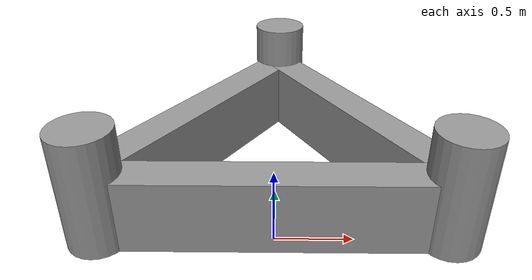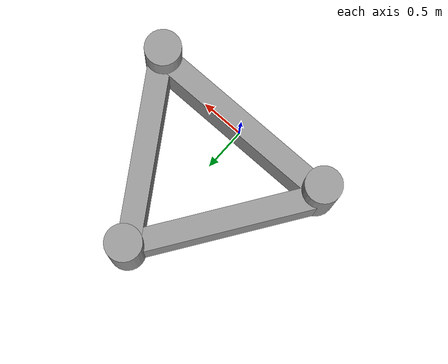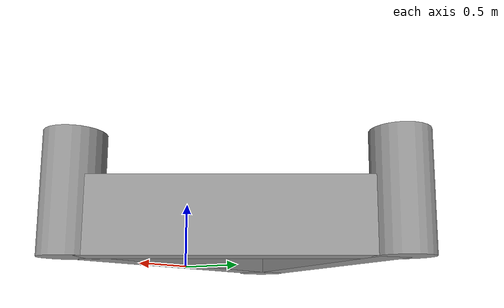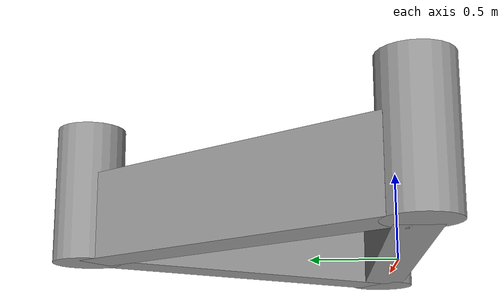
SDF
<?xml version='1.0'?>
<sdf version='1.7'>
  <model name='custom_final_obj'>
    <link name='link_0'>
      <inertial>
        <mass>1</mass>
        <inertia>
          <ixx>0.166667</ixx>
          <ixy>0</ixy>
          <ixz>0</ixz>
          <iyy>0.166667</iyy>
          <iyz>0</iyz>
          <izz>0.166667</izz>
        </inertia>
        <pose>0 0 0 0 -0 0</pose>
      </inertial>
      <pose>0 -0 0.25 0 -0 0</pose>
      <gravity>1</gravity>
      <self_collide>0</self_collide>
      <kinematic>0</kinematic>
      <enable_wind>0</enable_wind>
      <visual name='visual'>
        <pose>0 0 0 0 -0 0</pose>
        <geometry>
          <box>
            <size>2 0.25 0.5</size>
          </box>
        </geometry>
        <material>
          <lighting>1</lighting>
          <script>
            <uri>file://media/materials/scripts/gazebo.material</uri>
            <name>Gazebo/Grey</name>
          </script>
          <shader type='pixel'>
            <normal_map>__default__</normal_map>
          </shader>
          <ambient>0.3 0.3 0.3 1</ambient>
          <diffuse>0.7 0.7 0.7 1</diffuse>
          <specular>0.01 0.01 0.01 1</specular>
          <emissive>0 0 0 1</emissive>
        </material>
        <transparency>0</transparency>
        <cast_shadows>1</cast_shadows>
      </visual>
      <collision name='collision'>
        <laser_retro>0</laser_retro>
        <max_contacts>10</max_contacts>
        <pose>0 0 0 0 -0 0</pose>
        <geometry>
          <box>
            <size>2 0.25 0.5</size>
          </box>
        </geometry>
        <surface>
          <friction>
            <ode>
              <mu>0</mu>
              <mu2>0</mu2>
              <fdir1>0 0 0</fdir1>
              <slip1>1</slip1>
              <slip2>1</slip2>
            </ode>
            <torsional>
              <coefficient>1</coefficient>
              <patch_radius>0</patch_radius>
              <surface_radius>0</surface_radius>
              <use_patch_radius>1</use_patch_radius>
              <ode>
                <slip>0</slip>
              </ode>
            </torsional>
          </friction>
          <bounce>
            <restitution_coefficient>0</restitution_coefficient>
            <threshold>1e+06</threshold>
          </bounce>
          <contact>
            <collide_without_contact>0</collide_without_contact>
            <collide_without_contact_bitmask>1</collide_without_contact_bitmask>
            <collide_bitmask>1</collide_bitmask>
            <ode>
              <soft_cfm>0</soft_cfm>
              <soft_erp>0.2</soft_erp>
              <kp>1e+13</kp>
              <kd>1</kd>
              <max_vel>0.01</max_vel>
              <min_depth>0</min_depth>
            </ode>
            <bullet>
              <split_impulse>1</split_impulse>
              <split_impulse_penetration_threshold>-0.01</split_impulse_penetration_threshold>
              <soft_cfm>0</soft_cfm>
              <soft_erp>0.2</soft_erp>
              <kp>1e+13</kp>
              <kd>1</kd>
            </bullet>
          </contact>
        </surface>
      </collision>
    </link>
    <link name='link_0_clone'>
      <inertial>
        <mass>1</mass>
        <inertia>
          <ixx>0.166667</ixx>
          <ixy>0</ixy>
          <ixz>0</ixz>
          <iyy>0.166667</iyy>
          <iyz>0</iyz>
          <izz>0.166667</izz>
        </inertia>
        <pose>0 0 0 0 -0 0</pose>
      </inertial>
      <pose>-0.532788 0.926798 0.250001 -2e-06 -2e-06 -2.1717</pose>
      <gravity>1</gravity>
      <self_collide>0</self_collide>
      <kinematic>0</kinematic>
      <enable_wind>0</enable_wind>
      <visual name='visual'>
        <pose>0 0 0 0 -0 0</pose>
        <geometry>
          <box>
            <size>2 0.25 0.5</size>
          </box>
        </geometry>
        <material>
          <lighting>1</lighting>
          <script>
            <uri>file://media/materials/scripts/gazebo.material</uri>
            <name>Gazebo/Grey</name>
          </script>
          <shader type='pixel'>
            <normal_map>__default__</normal_map>
          </shader>
          <ambient>0.3 0.3 0.3 1</ambient>
          <diffuse>0.7 0.7 0.7 1</diffuse>
          <specular>0.01 0.01 0.01 1</specular>
          <emissive>0 0 0 1</emissive>
        </material>
        <transparency>0</transparency>
        <cast_shadows>1</cast_shadows>
      </visual>
      <collision name='collision'>
        <laser_retro>0</laser_retro>
        <max_contacts>10</max_contacts>
        <pose>0 0 0 0 -0 0</pose>
        <geometry>
          <box>
            <size>2 0.25 0.5</size>
          </box>
        </geometry>
        <surface>
          <friction>
            <ode>
              <mu>0</mu>
              <mu2>0</mu2>
              <fdir1>0 0 0</fdir1>
              <slip1>1</slip1>
              <slip2>1</slip2>
            </ode>
            <torsional>
              <coefficient>1</coefficient>
              <patch_radius>0</patch_radius>
              <surface_radius>0</surface_radius>
              <use_patch_radius>1</use_patch_radius>
              <ode>
                <slip>0</slip>
              </ode>
            </torsional>
          </friction>
          <bounce>
            <restitution_coefficient>0</restitution_coefficient>
            <threshold>1e+06</threshold>
          </bounce>
          <contact>
            <collide_without_contact>0</collide_without_contact>
            <collide_without_contact_bitmask>1</collide_without_contact_bitmask>
            <collide_bitmask>1</collide_bitmask>
            <ode>
              <soft_cfm>0</soft_cfm>
              <soft_erp>0.2</soft_erp>
              <kp>1e+13</kp>
              <kd>1</kd>
              <max_vel>0.01</max_vel>
              <min_depth>0</min_depth>
            </ode>
            <bullet>
              <split_impulse>1</split_impulse>
              <split_impulse_penetration_threshold>-0.01</split_impulse_penetration_threshold>
              <soft_cfm>0</soft_cfm>
              <soft_erp>0.2</soft_erp>
              <kp>1e+13</kp>
              <kd>1</kd>
            </bullet>
          </contact>
        </surface>
      </collision>
    </link>
    <link name='link_0_clone_clone'>
      <inertial>
        <mass>1</mass>
        <inertia>
          <ixx>0.166667</ixx>
          <ixy>0</ixy>
          <ixz>0</ixz>
          <iyy>0.166667</iyy>
          <iyz>0</iyz>
          <izz>0.166667</izz>
        </inertia>
        <pose>0 0 0 0 -0 0</pose>
      </inertial>
      <pose>0.553452 0.921008 0.25 -5e-06 3e-06 -1.00541</pose>
      <gravity>1</gravity>
      <self_collide>0</self_collide>
      <kinematic>0</kinematic>
      <enable_wind>0</enable_wind>
      <visual name='visual'>
        <pose>0 0 0 0 -0 0</pose>
        <geometry>
          <box>
            <size>2 0.25 0.5</size>
          </box>
        </geometry>
        <material>
          <lighting>1</lighting>
          <script>
            <uri>file://media/materials/scripts/gazebo.material</uri>
            <name>Gazebo/Grey</name>
          </script>
          <shader type='pixel'>
            <normal_map>__default__</normal_map>
          </shader>
          <ambient>0.3 0.3 0.3 1</ambient>
          <diffuse>0.7 0.7 0.7 1</diffuse>
          <specular>0.01 0.01 0.01 1</specular>
          <emissive>0 0 0 1</emissive>
        </material>
        <transparency>0</transparency>
        <cast_shadows>1</cast_shadows>
      </visual>
      <collision name='collision'>
        <laser_retro>0</laser_retro>
        <max_contacts>10</max_contacts>
        <pose>0 0 0 0 -0 0</pose>
        <geometry>
          <box>
            <size>2 0.25 0.5</size>
          </box>
        </geometry>
        <surface>
          <friction>
            <ode>
              <mu>0</mu>
              <mu2>0</mu2>
              <fdir1>0 0 0</fdir1>
              <slip1>1</slip1>
              <slip2>1</slip2>
            </ode>
            <torsional>
              <coefficient>1</coefficient>
              <patch_radius>0</patch_radius>
              <surface_radius>0</surface_radius>
              <use_patch_radius>1</use_patch_radius>
              <ode>
                <slip>0</slip>
              </ode>
            </torsional>
          </friction>
          <bounce>
            <restitution_coefficient>0</restitution_coefficient>
            <threshold>1e+06</threshold>
          </bounce>
          <contact>
            <collide_without_contact>0</collide_without_contact>
            <collide_without_contact_bitmask>1</collide_without_contact_bitmask>
            <collide_bitmask>1</collide_bitmask>
            <ode>
              <soft_cfm>0</soft_cfm>
              <soft_erp>0.2</soft_erp>
              <kp>1e+13</kp>
              <kd>1</kd>
              <max_vel>0.01</max_vel>
              <min_depth>0</min_depth>
            </ode>
            <bullet>
              <split_impulse>1</split_impulse>
              <split_impulse_penetration_threshold>-0.01</split_impulse_penetration_threshold>
              <soft_cfm>0</soft_cfm>
              <soft_erp>0.2</soft_erp>
              <kp>1e+13</kp>
              <kd>1</kd>
            </bullet>
          </contact>
        </surface>
      </collision>
    </link>
    <link name='link_1'>
      <inertial>
        <mass>1</mass>
        <inertia>
          <ixx>0.145833</ixx>
          <ixy>0</ixy>
          <ixz>0</ixz>
          <iyy>0.145833</iyy>
          <iyz>0</iyz>
          <izz>0.125</izz>
        </inertia>
        <pose>0 0 0 0 -0 0</pose>
      </inertial>
      <pose>1.1 0 0.4 0 -0 0</pose>
      <gravity>1</gravity>
      <self_collide>0</self_collide>
      <kinematic>0</kinematic>
      <enable_wind>0</enable_wind>
      <visual name='visual'>
        <pose>0 0 0 0 -0 0</pose>
        <geometry>
          <cylinder>
            <radius>0.2</radius>
            <length>0.8</length>
          </cylinder>
        </geometry>
        <material>
          <lighting>1</lighting>
          <script>
            <uri>file://media/materials/scripts/gazebo.material</uri>
            <name>Gazebo/Grey</name>
          </script>
          <shader type='pixel'>
            <normal_map>__default__</normal_map>
          </shader>
          <ambient>0.3 0.3 0.3 1</ambient>
          <diffuse>0.7 0.7 0.7 1</diffuse>
          <specular>0.01 0.01 0.01 1</specular>
          <emissive>0 0 0 1</emissive>
        </material>
        <transparency>0</transparency>
        <cast_shadows>1</cast_shadows>
      </visual>
      <collision name='collision'>
        <laser_retro>0</laser_retro>
        <max_contacts>10</max_contacts>
        <pose>0 0 0 0 -0 0</pose>
        <geometry>
          <cylinder>
            <radius>0.2</radius>
            <length>0.8</length>
          </cylinder>
        </geometry>
        <surface>
          <friction>
            <ode>
              <mu>0</mu>
              <mu2>0</mu2>
              <fdir1>0 0 0</fdir1>
              <slip1>1</slip1>
              <slip2>1</slip2>
            </ode>
            <torsional>
              <coefficient>1</coefficient>
              <patch_radius>0</patch_radius>
              <surface_radius>0</surface_radius>
              <use_patch_radius>1</use_patch_radius>
              <ode>
                <slip>0</slip>
              </ode>
            </torsional>
          </friction>
          <bounce>
            <restitution_coefficient>0</restitution_coefficient>
            <threshold>1e+06</threshold>
          </bounce>
          <contact>
            <collide_without_contact>0</collide_without_contact>
            <collide_without_contact_bitmask>1</collide_without_contact_bitmask>
            <collide_bitmask>1</collide_bitmask>
            <ode>
              <soft_cfm>0</soft_cfm>
              <soft_erp>0.2</soft_erp>
              <kp>1e+13</kp>
              <kd>1</kd>
              <max_vel>0.01</max_vel>
              <min_depth>0</min_depth>
            </ode>
            <bullet>
              <split_impulse>1</split_impulse>
              <split_impulse_penetration_threshold>-0.01</split_impulse_penetration_threshold>
              <soft_cfm>0</soft_cfm>
              <soft_erp>0.2</soft_erp>
              <kp>1e+13</kp>
              <kd>1</kd>
            </bullet>
          </contact>
        </surface>
      </collision>
    </link>
    <link name='link_1_clone'>
      <inertial>
        <mass>1</mass>
        <inertia>
          <ixx>0.145833</ixx>
          <ixy>0</ixy>
          <ixz>0</ixz>
          <iyy>0.145833</iyy>
          <iyz>0</iyz>
          <izz>0.125</izz>
        </inertia>
        <pose>0 0 0 0 -0 0</pose>
      </inertial>
      <pose>-1.1 -0 0.4 0 -0 0</pose>
      <gravity>1</gravity>
      <self_collide>0</self_collide>
      <kinematic>0</kinematic>
      <enable_wind>0</enable_wind>
      <visual name='visual'>
        <pose>0 0 0 0 -0 0</pose>
        <geometry>
          <cylinder>
            <radius>0.2</radius>
            <length>0.8</length>
          </cylinder>
        </geometry>
        <material>
          <lighting>1</lighting>
          <script>
            <uri>file://media/materials/scripts/gazebo.material</uri>
            <name>Gazebo/Grey</name>
          </script>
          <shader type='pixel'>
            <normal_map>__default__</normal_map>
          </shader>
          <ambient>0.3 0.3 0.3 1</ambient>
          <diffuse>0.7 0.7 0.7 1</diffuse>
          <specular>0.01 0.01 0.01 1</specular>
          <emissive>0 0 0 1</emissive>
        </material>
        <transparency>0</transparency>
        <cast_shadows>1</cast_shadows>
      </visual>
      <collision name='collision'>
        <laser_retro>0</laser_retro>
        <max_contacts>10</max_contacts>
        <pose>0 0 0 0 -0 0</pose>
        <geometry>
          <cylinder>
            <radius>0.2</radius>
            <length>0.8</length>
          </cylinder>
        </geometry>
        <surface>
          <friction>
            <ode>
              <mu>0</mu>
              <mu2>0</mu2>
              <fdir1>0 0 0</fdir1>
              <slip1>1</slip1>
              <slip2>1</slip2>
            </ode>
            <torsional>
              <coefficient>1</coefficient>
              <patch_radius>0</patch_radius>
              <surface_radius>0</surface_radius>
              <use_patch_radius>1</use_patch_radius>
              <ode>
                <slip>0</slip>
              </ode>
            </torsional>
          </friction>
          <bounce>
            <restitution_coefficient>0</restitution_coefficient>
            <threshold>1e+06</threshold>
          </bounce>
          <contact>
            <collide_without_contact>0</collide_without_contact>
            <collide_without_contact_bitmask>1</collide_without_contact_bitmask>
            <collide_bitmask>1</collide_bitmask>
            <ode>
              <soft_cfm>0</soft_cfm>
              <soft_erp>0.2</soft_erp>
              <kp>1e+13</kp>
              <kd>1</kd>
              <max_vel>0.01</max_vel>
              <min_depth>0</min_depth>
            </ode>
            <bullet>
              <split_impulse>1</split_impulse>
              <split_impulse_penetration_threshold>-0.01</split_impulse_penetration_threshold>
              <soft_cfm>0</soft_cfm>
              <soft_erp>0.2</soft_erp>
              <kp>1e+13</kp>
              <kd>1</kd>
            </bullet>
          </contact>
        </surface>
      </collision>
    </link>
    <link name='link_1_clone_0'>
      <inertial>
        <mass>1</mass>
        <inertia>
          <ixx>0.145833</ixx>
          <ixy>0</ixy>
          <ixz>0</ixz>
          <iyy>0.145833</iyy>
          <iyz>0</iyz>
          <izz>0.125</izz>
        </inertia>
        <pose>0 0 0 0 -0 0</pose>
      </inertial>
      <pose>0.033379 1.79383 0.4 -0 3e-06 -8e-06</pose>
      <gravity>1</gravity>
      <self_collide>0</self_collide>
      <kinematic>0</kinematic>
      <enable_wind>0</enable_wind>
      <visual name='visual'>
        <pose>0 0 0 0 -0 0</pose>
        <geometry>
          <cylinder>
            <radius>0.2</radius>
            <length>0.8</length>
          </cylinder>
        </geometry>
        <material>
          <lighting>1</lighting>
          <script>
            <uri>file://media/materials/scripts/gazebo.material</uri>
            <name>Gazebo/Grey</name>
          </script>
          <shader type='pixel'>
            <normal_map>__default__</normal_map>
          </shader>
          <ambient>0.3 0.3 0.3 1</ambient>
          <diffuse>0.7 0.7 0.7 1</diffuse>
          <specular>0.01 0.01 0.01 1</specular>
          <emissive>0 0 0 1</emissive>
        </material>
        <transparency>0</transparency>
        <cast_shadows>1</cast_shadows>
      </visual>
      <collision name='collision'>
        <laser_retro>0</laser_retro>
        <max_contacts>10</max_contacts>
        <pose>0 0 0 0 -0 0</pose>
        <geometry>
          <cylinder>
            <radius>0.2</radius>
            <length>0.8</length>
          </cylinder>
        </geometry>
        <surface>
          <friction>
            <ode>
              <mu>0</mu>
              <mu2>0</mu2>
              <fdir1>0 0 0</fdir1>
              <slip1>1</slip1>
              <slip2>1</slip2>
            </ode>
            <torsional>
              <coefficient>1</coefficient>
              <patch_radius>0</patch_radius>
              <surface_radius>0</surface_radius>
              <use_patch_radius>1</use_patch_radius>
              <ode>
                <slip>0</slip>
              </ode>
            </torsional>
          </friction>
          <bounce>
            <restitution_coefficient>0</restitution_coefficient>
            <threshold>1e+06</threshold>
          </bounce>
          <contact>
            <collide_without_contact>0</collide_without_contact>
            <collide_without_contact_bitmask>1</collide_without_contact_bitmask>
            <collide_bitmask>1</collide_bitmask>
            <ode>
              <soft_cfm>0</soft_cfm>
              <soft_erp>0.2</soft_erp>
              <kp>1e+13</kp>
              <kd>1</kd>
              <max_vel>0.01</max_vel>
              <min_depth>0</min_depth>
            </ode>
            <bullet>
              <split_impulse>1</split_impulse>
              <split_impulse_penetration_threshold>-0.01</split_impulse_penetration_threshold>
              <soft_cfm>0</soft_cfm>
              <soft_erp>0.2</soft_erp>
              <kp>1e+13</kp>
              <kd>1</kd>
            </bullet>
          </contact>
        </surface>
      </collision>
    </link>
    <static>0</static>
    <allow_auto_disable>1</allow_auto_disable>
  </model>
</sdf>
